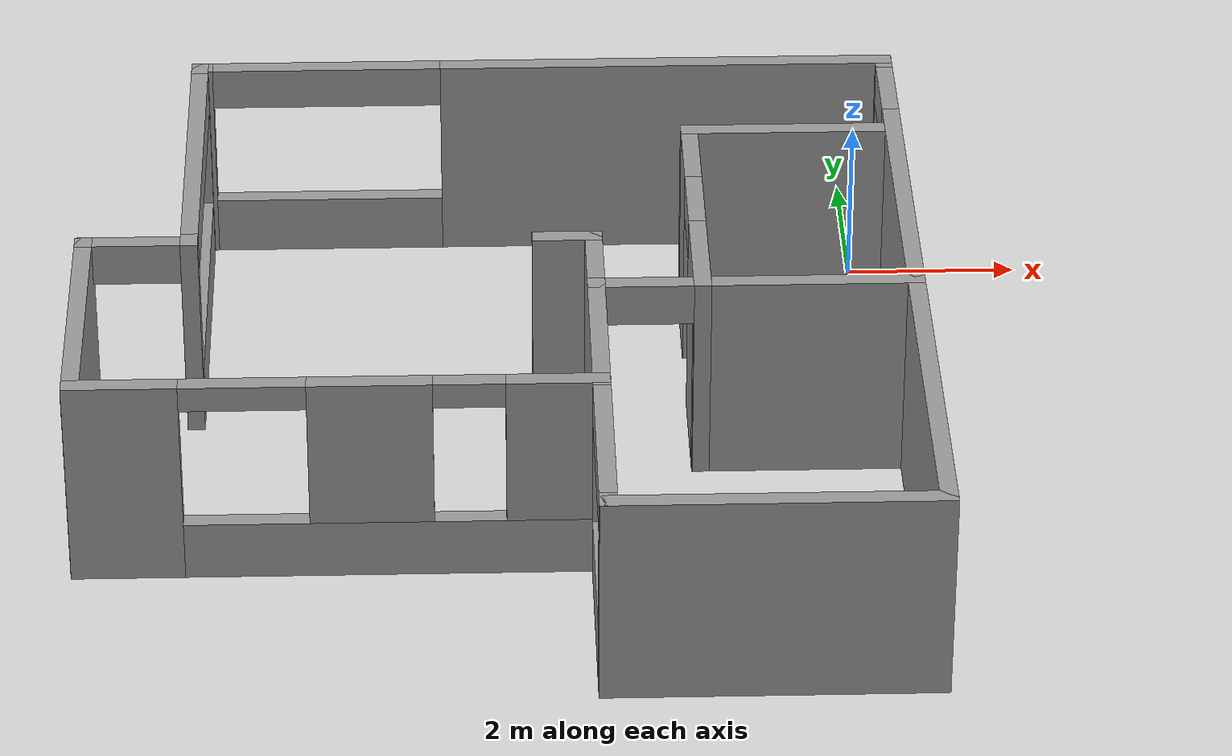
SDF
<?xml version="1.0" ?>
<sdf version='1.4'>
  <model name='RoCKIn@Home'>
    <link name='Wall_12'>
      <collision name='Wall_12_Collision'>
        <geometry>
          <box>
            <size>2.6 0.2 2.5</size>
          </box>
        </geometry>
        <pose>0 0 1.25 0 -0 0</pose>
        <max_contacts>10</max_contacts>
        <surface>
          <bounce/>
          <friction>
            <ode/>
          </friction>
          <contact>
            <ode/>
          </contact>
        </surface>
      </collision>
      <visual name='Wall_12_Visual'>
        <pose>0 0 1.25 0 -0 0</pose>
        <geometry>
          <box>
            <size>2.6 0.2 2.5</size>
          </box>
        </geometry>
        <material>
          <script>
            <uri>file://media/materials/scripts/gazebo.material</uri>
            <name>Gazebo/Grey</name>
          </script>
        </material>
      </visual>
      <velocity_decay>
        <linear>0</linear>
        <angular>0</angular>
      </velocity_decay>
      <pose>7.8 1.205 0 0 -0 1.5708</pose>
      <self_collide>0</self_collide>
      <kinematic>0</kinematic>
      <gravity>1</gravity>
    </link>
    <link name='Wall_14'>
      <pose>6.0996 2.4048 0 0 -0 3.14159</pose>
      <visual name='Wall_14_Visual_0'>
        <pose>-1.20789 0 1.25 0 -0 0</pose>
        <geometry>
          <box>
            <size>1.18422 0.2 2.5</size>
          </box>
        </geometry>
        <material>
          <script>
            <uri>file://media/materials/scripts/gazebo.material</uri>
            <name>Gazebo/Grey</name>
          </script>
        </material>
      </visual>
      <collision name='Wall_14_Collision_0'>
        <geometry>
          <box>
            <size>1.18422 0.2 2.5</size>
          </box>
        </geometry>
        <pose>-1.20789 0 1.25 0 -0 0</pose>
        <max_contacts>10</max_contacts>
        <surface>
          <bounce/>
          <friction>
            <ode/>
          </friction>
          <contact>
            <ode/>
          </contact>
        </surface>
      </collision>
      <visual name='Wall_14_Visual_1'>
        <pose>1.09211 0 1.25 0 -0 0</pose>
        <geometry>
          <box>
            <size>1.41579 0.2 2.5</size>
          </box>
        </geometry>
        <material>
          <script>
            <uri>file://media/materials/scripts/gazebo.material</uri>
            <name>Gazebo/Grey</name>
          </script>
        </material>
      </visual>
      <collision name='Wall_14_Collision_1'>
        <geometry>
          <box>
            <size>1.41579 0.2 2.5</size>
          </box>
        </geometry>
        <pose>1.09211 0 1.25 0 -0 0</pose>
        <max_contacts>10</max_contacts>
        <surface>
          <bounce/>
          <friction>
            <ode/>
          </friction>
          <contact>
            <ode/>
          </contact>
        </surface>
      </collision>
      <visual name='Wall_14_Visual_2'>
        <pose>-0.115785 0 2.25 0 -0 0</pose>
        <geometry>
          <box>
            <size>1 0.2 0.5</size>
          </box>
        </geometry>
        <material>
          <script>
            <uri>file://media/materials/scripts/gazebo.material</uri>
            <name>Gazebo/Grey</name>
          </script>
        </material>
      </visual>
      <collision name='Wall_14_Collision_2'>
        <geometry>
          <box>
            <size>1 0.2 0.5</size>
          </box>
        </geometry>
        <pose>-0.115785 0 2.25 0 -0 0</pose>
        <max_contacts>10</max_contacts>
        <surface>
          <bounce/>
          <friction>
            <ode/>
          </friction>
          <contact>
            <ode/>
          </contact>
        </surface>
      </collision>
      <velocity_decay>
        <linear>0</linear>
        <angular>0</angular>
      </velocity_decay>
      <self_collide>0</self_collide>
      <kinematic>0</kinematic>
      <gravity>1</gravity>
    </link>
    <link name='Wall_16'>
      <collision name='Wall_16_Collision'>
        <geometry>
          <box>
            <size>2.60492 0.2 2.5</size>
          </box>
        </geometry>
        <pose>0 0 1.25 0 -0 0</pose>
        <max_contacts>10</max_contacts>
        <surface>
          <bounce/>
          <friction>
            <ode/>
          </friction>
          <contact>
            <ode/>
          </contact>
        </surface>
      </collision>
      <visual name='Wall_16_Visual'>
        <pose>0 0 1.25 0 -0 0</pose>
        <geometry>
          <box>
            <size>2.60492 0.2 2.5</size>
          </box>
        </geometry>
        <material>
          <script>
            <uri>file://media/materials/scripts/gazebo.material</uri>
            <name>Gazebo/Grey</name>
          </script>
        </material>
      </visual>
      <velocity_decay>
        <linear>0</linear>
        <angular>0</angular>
      </velocity_decay>
      <pose>4.39903 1.20277 0 0 -0 1.5708</pose>
      <self_collide>0</self_collide>
      <kinematic>0</kinematic>
      <gravity>1</gravity>
    </link>
    <link name='Wall_18'>
      <collision name='Wall_18_Collision'>
        <geometry>
          <box>
            <size>3.8 0.2 2.5</size>
          </box>
        </geometry>
        <pose>0 0 1.25 0 -0 0</pose>
        <max_contacts>10</max_contacts>
        <surface>
          <bounce/>
          <friction>
            <ode/>
          </friction>
          <contact>
            <ode/>
          </contact>
        </surface>
      </collision>
      <visual name='Wall_18_Visual'>
        <pose>0 0 1.25 0 -0 0</pose>
        <geometry>
          <box>
            <size>3.8 0.2 2.5</size>
          </box>
        </geometry>
        <material>
          <script>
            <uri>file://media/materials/scripts/gazebo.material</uri>
            <name>Gazebo/Grey</name>
          </script>
        </material>
      </visual>
      <velocity_decay>
        <linear>0</linear>
        <angular>0</angular>
      </velocity_decay>
      <pose>0.024876 1.80003 0 0 -0 1.5708</pose>
      <self_collide>0</self_collide>
      <kinematic>0</kinematic>
      <gravity>1</gravity>
    </link>
    <link name='Wall_2'>
      <pose>4.7266 0 0 0 -0 0</pose>
      <visual name='Wall_2_Visual_0'>
        <pose>-0.649274 0 1.25 0 -0 0</pose>
        <geometry>
          <box>
            <size>8.30145 0.2 2.5</size>
          </box>
        </geometry>
        <material>
          <script>
            <uri>file://media/materials/scripts/gazebo.material</uri>
            <name>Gazebo/Grey</name>
          </script>
        </material>
      </visual>
      <collision name='Wall_2_Collision_0'>
        <geometry>
          <box>
            <size>8.30145 0.2 2.5</size>
          </box>
        </geometry>
        <pose>-0.649274 0 1.25 0 -0 0</pose>
        <max_contacts>10</max_contacts>
        <surface>
          <bounce/>
          <friction>
            <ode/>
          </friction>
          <contact>
            <ode/>
          </contact>
        </surface>
      </collision>
      <visual name='Wall_2_Visual_1'>
        <pose>4.65073 0 1.25 0 -0 0</pose>
        <geometry>
          <box>
            <size>0.298547 0.2 2.5</size>
          </box>
        </geometry>
        <material>
          <script>
            <uri>file://media/materials/scripts/gazebo.material</uri>
            <name>Gazebo/Grey</name>
          </script>
        </material>
      </visual>
      <collision name='Wall_2_Collision_1'>
        <geometry>
          <box>
            <size>0.298547 0.2 2.5</size>
          </box>
        </geometry>
        <pose>4.65073 0 1.25 0 -0 0</pose>
        <max_contacts>10</max_contacts>
        <surface>
          <bounce/>
          <friction>
            <ode/>
          </friction>
          <contact>
            <ode/>
          </contact>
        </surface>
      </collision>
      <visual name='Wall_2_Visual_2'>
        <pose>4.00145 0 2.25 0 -0 0</pose>
        <geometry>
          <box>
            <size>1 0.2 0.5</size>
          </box>
        </geometry>
        <material>
          <script>
            <uri>file://media/materials/scripts/gazebo.material</uri>
            <name>Gazebo/Grey</name>
          </script>
        </material>
      </visual>
      <collision name='Wall_2_Collision_2'>
        <geometry>
          <box>
            <size>1 0.2 0.5</size>
          </box>
        </geometry>
        <pose>4.00145 0 2.25 0 -0 0</pose>
        <max_contacts>10</max_contacts>
        <surface>
          <bounce/>
          <friction>
            <ode/>
          </friction>
          <contact>
            <ode/>
          </contact>
        </surface>
      </collision>
      <velocity_decay>
        <linear>0</linear>
        <angular>0</angular>
      </velocity_decay>
      <self_collide>0</self_collide>
      <kinematic>0</kinematic>
      <gravity>1</gravity>
    </link>
    <link name='Wall_20'>
      <pose>2.72456 3.60059 0 0 -0 0</pose>
      <visual name='Wall_20_Visual_0'>
        <pose>-2.67396 0 1.25 0 -0 0</pose>
        <geometry>
          <box>
            <size>0.251208 0.2 2.5</size>
          </box>
        </geometry>
        <material>
          <script>
            <uri>file://media/materials/scripts/gazebo.material</uri>
            <name>Gazebo/Grey</name>
          </script>
        </material>
      </visual>
      <collision name='Wall_20_Collision_0'>
        <geometry>
          <box>
            <size>0.251208 0.2 2.5</size>
          </box>
        </geometry>
        <pose>-2.67396 0 1.25 0 -0 0</pose>
        <max_contacts>10</max_contacts>
        <surface>
          <bounce/>
          <friction>
            <ode/>
          </friction>
          <contact>
            <ode/>
          </contact>
        </surface>
      </collision>
      <visual name='Wall_20_Visual_1'>
        <pose>1.1766 0 1.25 0 -0 0</pose>
        <geometry>
          <box>
            <size>3.24591 0.2 2.5</size>
          </box>
        </geometry>
        <material>
          <script>
            <uri>file://media/materials/scripts/gazebo.material</uri>
            <name>Gazebo/Grey</name>
          </script>
        </material>
      </visual>
      <collision name='Wall_20_Collision_1'>
        <geometry>
          <box>
            <size>3.24591 0.2 2.5</size>
          </box>
        </geometry>
        <pose>1.1766 0 1.25 0 -0 0</pose>
        <max_contacts>10</max_contacts>
        <surface>
          <bounce/>
          <friction>
            <ode/>
          </friction>
          <contact>
            <ode/>
          </contact>
        </surface>
      </collision>
      <visual name='Wall_20_Visual_2'>
        <pose>-1.49735 0 2.25 0 -0 0</pose>
        <geometry>
          <box>
            <size>2.102 0.2 0.5</size>
          </box>
        </geometry>
        <material>
          <script>
            <uri>file://media/materials/scripts/gazebo.material</uri>
            <name>Gazebo/Grey</name>
          </script>
        </material>
      </visual>
      <collision name='Wall_20_Collision_2'>
        <geometry>
          <box>
            <size>2.102 0.2 0.5</size>
          </box>
        </geometry>
        <pose>-1.49735 0 2.25 0 -0 0</pose>
        <max_contacts>10</max_contacts>
        <surface>
          <bounce/>
          <friction>
            <ode/>
          </friction>
          <contact>
            <ode/>
          </contact>
        </surface>
      </collision>
      <visual name='Wall_20_Visual_3'>
        <pose>-1.49735 0 0.35 0 -0 0</pose>
        <geometry>
          <box>
            <size>2.102 0.2 0.7</size>
          </box>
        </geometry>
        <material>
          <script>
            <uri>file://media/materials/scripts/gazebo.material</uri>
            <name>Gazebo/Grey</name>
          </script>
        </material>
      </visual>
      <collision name='Wall_20_Collision_3'>
        <geometry>
          <box>
            <size>2.102 0.2 0.3</size>
          </box>
        </geometry>
        <pose>-1.49735 0 0.35 0 -0 0</pose>
        <max_contacts>10</max_contacts>
        <surface>
          <bounce/>
          <friction>
            <ode/>
          </friction>
          <contact>
            <ode/>
          </contact>
        </surface>
      </collision>
      <velocity_decay>
        <linear>0</linear>
        <angular>0</angular>
      </velocity_decay>
      <self_collide>0</self_collide>
      <kinematic>0</kinematic>
      <gravity>1</gravity>
    </link>
    <link name='Wall_22'>
      <pose>4.39856 3.00206 0 0 -0 1.5708</pose>
      <visual name='Wall_22_Visual_0'>
        <pose>-0.601085 0 1.25 0 -0 0</pose>
        <geometry>
          <box>
            <size>0.194709 0.2 2.5</size>
          </box>
        </geometry>
        <material>
          <script>
            <uri>file://media/materials/scripts/gazebo.material</uri>
            <name>Gazebo/Grey</name>
          </script>
        </material>
      </visual>
      <collision name='Wall_22_Collision_0'>
        <geometry>
          <box>
            <size>0.194709 0.2 2.5</size>
          </box>
        </geometry>
        <pose>-0.601085 0 1.25 0 -0 0</pose>
        <max_contacts>10</max_contacts>
        <surface>
          <bounce/>
          <friction>
            <ode/>
          </friction>
          <contact>
            <ode/>
          </contact>
        </surface>
      </collision>
      <visual name='Wall_22_Visual_1'>
        <pose>0.597355 0 1.25 0 -0 0</pose>
        <geometry>
          <box>
            <size>0.202171 0.2 2.5</size>
          </box>
        </geometry>
        <material>
          <script>
            <uri>file://media/materials/scripts/gazebo.material</uri>
            <name>Gazebo/Grey</name>
          </script>
        </material>
      </visual>
      <collision name='Wall_22_Collision_1'>
        <geometry>
          <box>
            <size>0.202171 0.2 2.5</size>
          </box>
        </geometry>
        <pose>0.597355 0 1.25 0 -0 0</pose>
        <max_contacts>10</max_contacts>
        <surface>
          <bounce/>
          <friction>
            <ode/>
          </friction>
          <contact>
            <ode/>
          </contact>
        </surface>
      </collision>
      <visual name='Wall_22_Visual_2'>
        <pose>-0.003731 0 2.25 0 -0 0</pose>
        <geometry>
          <box>
            <size>1 0.2 0.5</size>
          </box>
        </geometry>
        <material>
          <script>
            <uri>file://media/materials/scripts/gazebo.material</uri>
            <name>Gazebo/Grey</name>
          </script>
        </material>
      </visual>
      <collision name='Wall_22_Collision_2'>
        <geometry>
          <box>
            <size>1 0.2 0.5</size>
          </box>
        </geometry>
        <pose>-0.003731 0 2.25 0 -0 0</pose>
        <max_contacts>10</max_contacts>
        <surface>
          <bounce/>
          <friction>
            <ode/>
          </friction>
          <contact>
            <ode/>
          </contact>
        </surface>
      </collision>
      <velocity_decay>
        <linear>0</linear>
        <angular>0</angular>
      </velocity_decay>
      <self_collide>0</self_collide>
      <kinematic>0</kinematic>
      <gravity>1</gravity>
    </link>
    <link name='Wall_24'>
      <pose>7.42703 8.20242 0 0 -0 3.14159</pose>
      <visual name='Wall_24_Visual_0'>
        <pose>-1.97924 0 1.25 0 -0 0</pose>
        <geometry>
          <box>
            <size>0.241529 0.2 2.5</size>
          </box>
        </geometry>
        <material>
          <script>
            <uri>file://media/materials/scripts/gazebo.material</uri>
            <name>Gazebo/Grey</name>
          </script>
        </material>
      </visual>
      <collision name='Wall_24_Collision_0'>
        <geometry>
          <box>
            <size>0.241529 0.2 2.5</size>
          </box>
        </geometry>
        <pose>-1.97924 0 1.25 0 -0 0</pose>
        <max_contacts>10</max_contacts>
        <surface>
          <bounce/>
          <friction>
            <ode/>
          </friction>
          <contact>
            <ode/>
          </contact>
        </surface>
      </collision>
      <visual name='Wall_24_Visual_1'>
        <pose>1.97395 0 1.25 0 -0 0</pose>
        <geometry>
          <box>
            <size>0.252091 0.2 2.5</size>
          </box>
        </geometry>
        <material>
          <script>
            <uri>file://media/materials/scripts/gazebo.material</uri>
            <name>Gazebo/Grey</name>
          </script>
        </material>
      </visual>
      <collision name='Wall_24_Collision_1'>
        <geometry>
          <box>
            <size>0.252091 0.2 2.5</size>
          </box>
        </geometry>
        <pose>1.97395 0 1.25 0 -0 0</pose>
        <max_contacts>10</max_contacts>
        <surface>
          <bounce/>
          <friction>
            <ode/>
          </friction>
          <contact>
            <ode/>
          </contact>
        </surface>
      </collision>
      <visual name='Wall_24_Visual_2'>
        <pose>-0.005281 0 2.25 0 -0 0</pose>
        <geometry>
          <box>
            <size>3.70638 0.2 0.5</size>
          </box>
        </geometry>
        <material>
          <script>
            <uri>file://media/materials/scripts/gazebo.material</uri>
            <name>Gazebo/Grey</name>
          </script>
        </material>
      </visual>
      <collision name='Wall_24_Collision_2'>
        <geometry>
          <box>
            <size>3.70638 0.2 0.5</size>
          </box>
        </geometry>
        <pose>-0.005281 0 2.25 0 -0 0</pose>
        <max_contacts>10</max_contacts>
        <surface>
          <bounce/>
          <friction>
            <ode/>
          </friction>
          <contact>
            <ode/>
          </contact>
        </surface>
      </collision>
      <visual name='Wall_24_Visual_3'>
        <pose>-0.005281 0 0.35 0 -0 0</pose>
        <geometry>
          <box>
            <size>3.70638 0.2 0.7</size>
          </box>
        </geometry>
        <material>
          <script>
            <uri>file://media/materials/scripts/gazebo.material</uri>
            <name>Gazebo/Grey</name>
          </script>
        </material>
      </visual>
      <collision name='Wall_24_Collision_3'>
        <geometry>
          <box>
            <size>3.70638 0.2 0.7</size>
          </box>
        </geometry>
        <pose>-0.005281 0 0.35 0 -0 0</pose>
        <max_contacts>10</max_contacts>
        <surface>
          <bounce/>
          <friction>
            <ode/>
          </friction>
          <contact>
            <ode/>
          </contact>
        </surface>
      </collision>
      <velocity_decay>
        <linear>0</linear>
        <angular>0</angular>
      </velocity_decay>
      <self_collide>0</self_collide>
      <kinematic>0</kinematic>
      <gravity>1</gravity>
    </link>
    <link name='Wall_28'>
      <collision name='Wall_28_Collision'>
        <geometry>
          <box>
            <size>3.2 0.2 2.5</size>
          </box>
        </geometry>
        <pose>0 0 1.25 0 -0 0</pose>
        <max_contacts>10</max_contacts>
        <surface>
          <bounce/>
          <friction>
            <ode/>
          </friction>
          <contact>
            <ode/>
          </contact>
        </surface>
      </collision>
      <visual name='Wall_28_Visual'>
        <pose>0 0 1.25 0 -0 0</pose>
        <geometry>
          <box>
            <size>3.2 0.2 2.5</size>
          </box>
        </geometry>
        <material>
          <script>
            <uri>file://media/materials/scripts/gazebo.material</uri>
            <name>Gazebo/Grey</name>
          </script>
        </material>
      </visual>
      <velocity_decay>
        <linear>0</linear>
        <angular>0</angular>
      </velocity_decay>
      <pose>3.92571 9.40229 0 0 -0 3.14159</pose>
      <self_collide>0</self_collide>
      <kinematic>0</kinematic>
      <gravity>1</gravity>
    </link>
    <link name='Wall_30'>
      <pose>2.42541 6.50159 0 0 0 -1.5708</pose>
      <visual name='Wall_30_Visual_0'>
        <pose>-2.363 0 1.25 0 -0 0</pose>
        <geometry>
          <box>
            <size>1.27269 0.2 2.5</size>
          </box>
        </geometry>
        <material>
          <script>
            <uri>file://media/materials/scripts/gazebo.material</uri>
            <name>Gazebo/Grey</name>
          </script>
        </material>
      </visual>
      <collision name='Wall_30_Collision_0'>
        <geometry>
          <box>
            <size>1.27269 0.2 2.5</size>
          </box>
        </geometry>
        <pose>-2.363 0 1.25 0 -0 0</pose>
        <max_contacts>10</max_contacts>
        <surface>
          <bounce/>
          <friction>
            <ode/>
          </friction>
          <contact>
            <ode/>
          </contact>
        </surface>
      </collision>
      <visual name='Wall_30_Visual_1'>
        <pose>0.636346 0 0.35 0 -0 0</pose>
        <geometry>
          <box>
            <size>4.726 0.2 0.7</size>
          </box>
        </geometry>
        <material>
          <script>
            <uri>file://media/materials/scripts/gazebo.material</uri>
            <name>Gazebo/Grey</name>
          </script>
        </material>
      </visual>
      <collision name='Wall_30_Collision_1'>
        <geometry>
          <box>
            <size>4.726 0.2 0.7</size>
          </box>
        </geometry>
        <pose>0.636346 0 0.35 0 -0 0</pose>
        <max_contacts>10</max_contacts>
        <surface>
          <bounce/>
          <friction>
            <ode/>
          </friction>
          <contact>
            <ode/>
          </contact>
        </surface>
      </collision>
      <visual name='Wall_30_Visual_2'>
        <pose>0.36359 0 1.6 0 -0 0</pose>
        <geometry>
          <box>
            <size>1.38049 0.2 1.8</size>
          </box>
        </geometry>
        <material>
          <script>
            <uri>file://media/materials/scripts/gazebo.material</uri>
            <name>Gazebo/Grey</name>
          </script>
        </material>
      </visual>
      <collision name='Wall_30_Collision_2'>
        <geometry>
          <box>
            <size>1.38049 0.2 1.8</size>
          </box>
        </geometry>
        <pose>0.36359 0 1.6 0 -0 0</pose>
        <max_contacts>10</max_contacts>
        <surface>
          <bounce/>
          <friction>
            <ode/>
          </friction>
          <contact>
            <ode/>
          </contact>
        </surface>
      </collision>
      <visual name='Wall_30_Visual_3'>
        <pose>2.42659 0 1.6 0 -0 0</pose>
        <geometry>
          <box>
            <size>1.14551 0.2 1.8</size>
          </box>
        </geometry>
        <material>
          <script>
            <uri>file://media/materials/scripts/gazebo.material</uri>
            <name>Gazebo/Grey</name>
          </script>
        </material>
      </visual>
      <collision name='Wall_30_Collision_3'>
        <geometry>
          <box>
            <size>1.14551 0.2 1.8</size>
          </box>
        </geometry>
        <pose>2.42659 0 1.6 0 -0 0</pose>
        <max_contacts>10</max_contacts>
        <surface>
          <bounce/>
          <friction>
            <ode/>
          </friction>
          <contact>
            <ode/>
          </contact>
        </surface>
      </collision>
      <visual name='Wall_30_Visual_4'>
        <pose>-1.02665 0 2.35 0 -0 0</pose>
        <geometry>
          <box>
            <size>1.4 0.2 0.3</size>
          </box>
        </geometry>
        <material>
          <script>
            <uri>file://media/materials/scripts/gazebo.material</uri>
            <name>Gazebo/Grey</name>
          </script>
        </material>
      </visual>
      <collision name='Wall_30_Collision_4'>
        <geometry>
          <box>
            <size>1.4 0.2 0.3</size>
          </box>
        </geometry>
        <pose>-1.02665 0 2.35 0 -0 0</pose>
        <max_contacts>10</max_contacts>
        <surface>
          <bounce/>
          <friction>
            <ode/>
          </friction>
          <contact>
            <ode/>
          </contact>
        </surface>
      </collision>
      <visual name='Wall_30_Visual_5'>
        <pose>1.45383 0 2.35 0 -0 0</pose>
        <geometry>
          <box>
            <size>0.8 0.2 0.3</size>
          </box>
        </geometry>
        <material>
          <script>
            <uri>file://media/materials/scripts/gazebo.material</uri>
            <name>Gazebo/Grey</name>
          </script>
        </material>
      </visual>
      <collision name='Wall_30_Collision_5'>
        <geometry>
          <box>
            <size>0.8 0.2 0.3</size>
          </box>
        </geometry>
        <pose>1.45383 0 2.35 0 -0 0</pose>
        <max_contacts>10</max_contacts>
        <surface>
          <bounce/>
          <friction>
            <ode/>
          </friction>
          <contact>
            <ode/>
          </contact>
        </surface>
      </collision>
      <velocity_decay>
        <linear>0</linear>
        <angular>0</angular>
      </velocity_decay>
      <self_collide>0</self_collide>
      <kinematic>0</kinematic>
      <gravity>1</gravity>
    </link>
    <link name='Wall_32'>
      <pose>5.42654 8.80216 0 0 0 -1.5708</pose>
      <visual name='Wall_32_Visual_0'>
        <pose>-0.599775 0 1.25 0 -0 0</pose>
        <geometry>
          <box>
            <size>0.199231 0.2 2.5</size>
          </box>
        </geometry>
        <material>
          <script>
            <uri>file://media/materials/scripts/gazebo.material</uri>
            <name>Gazebo/Grey</name>
          </script>
        </material>
      </visual>
      <collision name='Wall_32_Collision_0'>
        <geometry>
          <box>
            <size>0.199231 0.2 2.5</size>
          </box>
        </geometry>
        <pose>-0.599775 0 1.25 0 -0 0</pose>
        <max_contacts>10</max_contacts>
        <surface>
          <bounce/>
          <friction>
            <ode/>
          </friction>
          <contact>
            <ode/>
          </contact>
        </surface>
      </collision>
      <visual name='Wall_32_Visual_1'>
        <pose>0.599615 0 1.25 0 -0 0</pose>
        <geometry>
          <box>
            <size>0.199549 0.2 2.5</size>
          </box>
        </geometry>
        <material>
          <script>
            <uri>file://media/materials/scripts/gazebo.material</uri>
            <name>Gazebo/Grey</name>
          </script>
        </material>
      </visual>
      <collision name='Wall_32_Collision_1'>
        <geometry>
          <box>
            <size>0.199549 0.2 2.5</size>
          </box>
        </geometry>
        <pose>0.599615 0 1.25 0 -0 0</pose>
        <max_contacts>10</max_contacts>
        <surface>
          <bounce/>
          <friction>
            <ode/>
          </friction>
          <contact>
            <ode/>
          </contact>
        </surface>
      </collision>
      <visual name='Wall_32_Visual_2'>
        <pose>-0.000159 0 2.25 0 -0 0</pose>
        <geometry>
          <box>
            <size>1 0.2 0.5</size>
          </box>
        </geometry>
        <material>
          <script>
            <uri>file://media/materials/scripts/gazebo.material</uri>
            <name>Gazebo/Grey</name>
          </script>
        </material>
      </visual>
      <collision name='Wall_32_Collision_2'>
        <geometry>
          <box>
            <size>1 0.2 0.5</size>
          </box>
        </geometry>
        <pose>-0.000159 0 2.25 0 -0 0</pose>
        <max_contacts>10</max_contacts>
        <surface>
          <bounce/>
          <friction>
            <ode/>
          </friction>
          <contact>
            <ode/>
          </contact>
        </surface>
      </collision>
      <velocity_decay>
        <linear>0</linear>
        <angular>0</angular>
      </velocity_decay>
      <self_collide>0</self_collide>
      <kinematic>0</kinematic>
      <gravity>1</gravity>
    </link>
    <link name='Wall_35'>
      <collision name='Wall_35_Collision'>
        <geometry>
          <box>
            <size>0.8 0.2 2.5</size>
          </box>
        </geometry>
        <pose>0 0 1.25 0 -0 0</pose>
        <max_contacts>10</max_contacts>
        <surface>
          <bounce/>
          <friction>
            <ode/>
          </friction>
          <contact>
            <ode/>
          </contact>
        </surface>
      </collision>
      <visual name='Wall_35_Visual'>
        <pose>0 0 1.25 0 -0 0</pose>
        <geometry>
          <box>
            <size>0.8 0.2 2.5</size>
          </box>
        </geometry>
        <material>
          <script>
            <uri>file://media/materials/scripts/gazebo.material</uri>
            <name>Gazebo/Grey</name>
          </script>
        </material>
      </visual>
      <velocity_decay>
        <linear>0</linear>
        <angular>0</angular>
      </velocity_decay>
      <pose>5.42451 3.90082 0 0 -0 1.5708</pose>
      <self_collide>0</self_collide>
      <kinematic>0</kinematic>
      <gravity>1</gravity>
    </link>
    <link name='Wall_8'>
      <pose>9.42875 4.1026 0 0 -0 1.5708</pose>
      <visual name='Wall_8_Visual_0'>
        <pose>-1.48935 0 1.25 0 -0 0</pose>
        <geometry>
          <box>
            <size>5.42201 0.2 2.5</size>
          </box>
        </geometry>
        <material>
          <script>
            <uri>file://media/materials/scripts/gazebo.material</uri>
            <name>Gazebo/Grey</name>
          </script>
        </material>
      </visual>
      <collision name='Wall_8_Collision_0'>
        <geometry>
          <box>
            <size>5.42201 0.2 2.5</size>
          </box>
        </geometry>
        <pose>-1.48935 0 1.25 0 -0 0</pose>
        <max_contacts>10</max_contacts>
        <surface>
          <bounce/>
          <friction>
            <ode/>
          </friction>
          <contact>
            <ode/>
          </contact>
        </surface>
      </collision>
      <visual name='Wall_8_Visual_1'>
        <pose>4.07465 0 1.25 0 -0 0</pose>
        <geometry>
          <box>
            <size>0.251416 0.2 2.5</size>
          </box>
        </geometry>
        <material>
          <script>
            <uri>file://media/materials/scripts/gazebo.material</uri>
            <name>Gazebo/Grey</name>
          </script>
        </material>
      </visual>
      <collision name='Wall_8_Collision_1'>
        <geometry>
          <box>
            <size>0.251416 0.2 2.5</size>
          </box>
        </geometry>
        <pose>4.07465 0 1.25 0 -0 0</pose>
        <max_contacts>10</max_contacts>
        <surface>
          <bounce/>
          <friction>
            <ode/>
          </friction>
          <contact>
            <ode/>
          </contact>
        </surface>
      </collision>
      <visual name='Wall_8_Visual_2'>
        <pose>2.5853 0 2.25 0 -0 0</pose>
        <geometry>
          <box>
            <size>2.72728 0.2 0.5</size>
          </box>
        </geometry>
        <material>
          <script>
            <uri>file://media/materials/scripts/gazebo.material</uri>
            <name>Gazebo/Grey</name>
          </script>
        </material>
      </visual>
      <collision name='Wall_8_Collision_2'>
        <geometry>
          <box>
            <size>2.72728 0.2 0.5</size>
          </box>
        </geometry>
        <pose>2.5853 0 2.25 0 -0 0</pose>
        <max_contacts>10</max_contacts>
        <surface>
          <bounce/>
          <friction>
            <ode/>
          </friction>
          <contact>
            <ode/>
          </contact>
        </surface>
      </collision>
      <visual name='Wall_8_Visual_3'>
        <pose>2.5853 0 0.35 0 -0 0</pose>
        <geometry>
          <box>
            <size>2.72728 0.2 0.7</size>
          </box>
        </geometry>
        <material>
          <script>
            <uri>file://media/materials/scripts/gazebo.material</uri>
            <name>Gazebo/Grey</name>
          </script>
        </material>
      </visual>
      <collision name='Wall_8_Collision_3'>
        <geometry>
          <box>
            <size>2.72728 0.2 0.7</size>
          </box>
        </geometry>
        <pose>2.5853 0 0.35 0 -0 0</pose>
        <max_contacts>10</max_contacts>
        <surface>
          <bounce/>
          <friction>
            <ode/>
          </friction>
          <contact>
            <ode/>
          </contact>
        </surface>
      </collision>
      <velocity_decay>
        <linear>0</linear>
        <angular>0</angular>
      </velocity_decay>
      <self_collide>0</self_collide>
      <kinematic>0</kinematic>
      <gravity>1</gravity>
    </link>
    <static>1</static>
    <pose>0.4 -8.6 0 0 -0 1.57</pose>
  </model>
</sdf>
